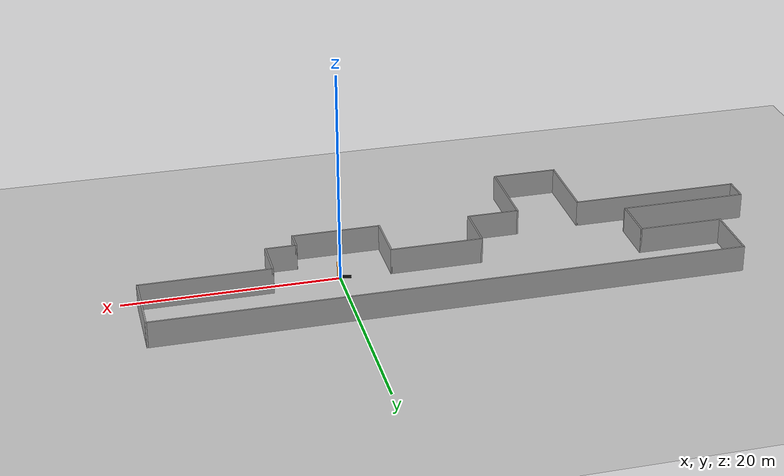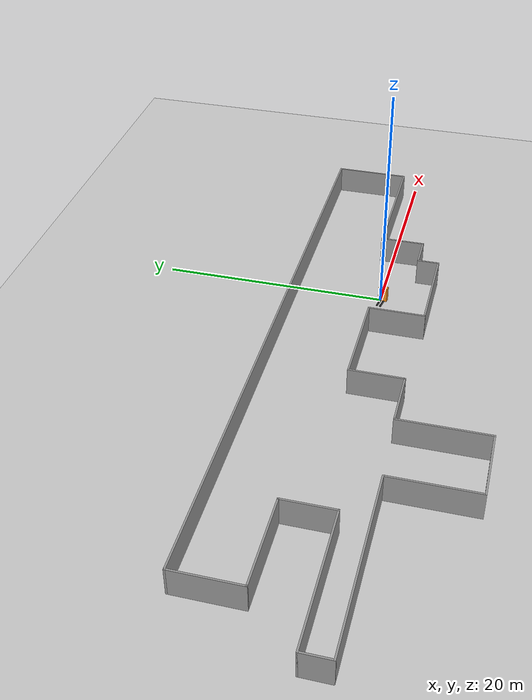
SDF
<sdf version="1.7">
 <world name="default">
  <light name="sun" type="directional">
   <pose>0 0 10 0 -0 0</pose>
   <diffuse>0.8 0.8 0.8 1</diffuse>
   <specular>0.2 0.2 0.2 1</specular>
   <attenuation>
    <range>1000</range>
    <constant>0.9</constant>
    <linear>0.01</linear>
    <quadratic>0.001</quadratic>
   </attenuation>
   <direction>-0.5 0.1 -0.9</direction>
   <spot><inner_angle>0</inner_angle><outer_angle>0</outer_angle><falloff>0</falloff></spot>
  </light>
  <model name="ground_plane">
   <static>1</static>
   <link name="link">
    <collision name="collision">
     <geometry><plane><normal>0 0 1</normal><size>100 100</size></plane></geometry>
     <surface>
      <contact><collide_bitmask>65535</collide_bitmask></contact>
      <friction><ode><mu>100</mu><mu2>50</mu2></ode></friction>
     </surface>
    </collision>
    <visual name="visual">
     <cast_shadows>0</cast_shadows>
     <geometry><plane><normal>0 0 1</normal><size>100 100</size></plane></geometry>
     <material>
      <script><uri>file://media/materials/scripts/gazebo.material</uri><name>Gazebo/Grey</name></script>
     </material>
    </visual>
   </link>
  </model>
  <gravity>0 0 -9.8</gravity>
  <magnetic_field>6e-06 2.3e-05 -4.2e-05</magnetic_field>
  <atmosphere type="adiabatic"/>
  <physics type="ode">
   <max_step_size>0.001</max_step_size>
   <real_time_factor>1</real_time_factor>
   <real_time_update_rate>1000</real_time_update_rate>
  </physics>
  <scene><ambient>0.4 0.4 0.4 1</ambient><background>0.7 0.7 0.7 1</background><shadows>1</shadows></scene>
  <audio><device>default</device></audio>
  <spherical_coordinates>
   <surface_model>EARTH_WGS84</surface_model>
   <latitude_deg>0</latitude_deg>
   <longitude_deg>0</longitude_deg>
   <elevation>0</elevation>
   <heading_deg>0</heading_deg>
  </spherical_coordinates>
  <model name="stacker">
   <link name="base_link">
    <inertial>
     <pose>-0.15 -0.000119 0.545385 0 -0 0</pose>
     <mass>260</mass>
     <inertia>
      <ixx>65.5208</ixx>
      <ixy>-0.157227</ixy>
      <ixz>-20.0967</ixz>
      <iyy>79.6196</iyy>
      <iyz>-4.194</iyz>
      <izz>34.2687</izz>
     </inertia>
    </inertial>
    <collision name="base_link_fixed_joint_lump__chassis_collision">
     <pose>0 0 0.7 0 0 -1.57</pose>
     <geometry><box><size>0.8 0.4 1.4</size></box></geometry>
    </collision>
    <collision name="base_link_fixed_joint_lump__left_fork_collision_1">
     <pose>-0.650124 0.15594 0.03 0 0 -1.57</pose>
     <geometry><box><size>0.16 0.9 0.06</size></box></geometry>
    </collision>
    <collision name="base_link_fixed_joint_lump__right_fork_collision_2">
     <pose>-0.649875 -0.156976 0.03 0 0 -1.57</pose>
     <geometry><box><size>0.16 0.9 0.06</size></box></geometry>
    </collision>
    <visual name="base_link_fixed_joint_lump__chassis_visual">
     <pose>0 0 0.7 0 0 -1.57</pose>
     <geometry><box><size>0.8 0.4 1.4</size></box></geometry>
     <material>
      <script><name>Gazebo/Orange</name><uri>file://media/materials/scripts/gazebo.material</uri></script>
     </material>
    </visual>
    <visual name="base_link_fixed_joint_lump__left_fork_visual_1">
     <pose>-0.650124 0.15594 0.03 0 0 -1.57</pose>
     <geometry><box><size>0.16 0.9 0.06</size></box></geometry>
     <material>
      <script><name>Gazebo/Black</name><uri>file://media/materials/scripts/gazebo.material</uri></script>
     </material>
    </visual>
    <visual name="base_link_fixed_joint_lump__right_fork_visual_2">
     <pose>-0.649875 -0.156976 0.03 0 0 -1.57</pose>
     <geometry><box><size>0.16 0.9 0.06</size></box></geometry>
     <material>
      <script><name>Gazebo/Black</name><uri>file://media/materials/scripts/gazebo.material</uri></script>
     </material>
    </visual>
   </link>
   <joint name="fork_wheel_l_joint" type="revolute">
    <pose relative_to="base_link">-0.870124 0.155765 0.0075 -1.57 0 -3.14</pose>
    <parent>base_link</parent>
    <child>fox_wheel_L</child>
    <axis>
     <xyz>0 0 -1</xyz>
     <limit><lower>-1e+16</lower><upper>1e+16</upper></limit>
     <dynamics><spring_reference>0</spring_reference><spring_stiffness>0</spring_stiffness></dynamics>
    </axis>
   </joint>
   <link name="fox_wheel_L">
    <pose relative_to="fork_wheel_l_joint">0 0 0 0 -0 0</pose>
    <inertial>
     <mass>1</mass>
     <inertia>
      <ixx>0.000689583</ixx>
      <ixy>0</ixy>
      <ixz>0</ixz>
      <iyy>0.000689583</iyy>
      <iyz>0</iyz>
      <izz>0.0003125</izz>
     </inertia>
    </inertial>
    <collision name="fox_wheel_L_collision">
     <geometry><cylinder><length>0.08</length><radius>0.025</radius></cylinder></geometry>
     <surface><friction><ode><mu>1500</mu><mu2>1500</mu2></ode></friction></surface>
    </collision>
    <visual name="fox_wheel_L_visual">
     <geometry><cylinder><length>0.08</length><radius>0.025</radius></cylinder></geometry>
     <material>
      <script><name>Gazebo/Grey</name><uri>file://media/materials/scripts/gazebo.material</uri></script>
     </material>
    </visual>
   </link>
   <joint name="fork_wheel_r_joint" type="revolute">
    <pose relative_to="base_link">-0.869875 -0.157151 0.0075 -1.57 0 -3.14</pose>
    <parent>base_link</parent>
    <child>fox_wheel_R</child>
    <axis>
     <xyz>0 0 -1</xyz>
     <limit><lower>-1e+16</lower><upper>1e+16</upper></limit>
     <dynamics><spring_reference>0</spring_reference><spring_stiffness>0</spring_stiffness></dynamics>
    </axis>
   </joint>
   <link name="fox_wheel_R">
    <pose relative_to="fork_wheel_r_joint">0 0 0 0 -0 0</pose>
    <inertial>
     <mass>1</mass>
     <inertia>
      <ixx>0.000689583</ixx>
      <ixy>0</ixy>
      <ixz>0</ixz>
      <iyy>0.000689583</iyy>
      <iyz>0</iyz>
      <izz>0.0003125</izz>
     </inertia>
    </inertial>
    <collision name="fox_wheel_R_collision">
     <geometry><cylinder><length>0.08</length><radius>0.025</radius></cylinder></geometry>
     <surface><friction><ode><mu>1500</mu><mu2>1500</mu2></ode></friction></surface>
    </collision>
    <visual name="fox_wheel_R_visual">
     <geometry><cylinder><length>0.08</length><radius>0.025</radius></cylinder></geometry>
     <material>
      <script><name>Gazebo/Grey</name><uri>file://media/materials/scripts/gazebo.material</uri></script>
     </material>
    </visual>
   </link>
   <joint name="steering_joint" type="revolute">
    <pose relative_to="base_link">0 0 0.09 0 0 -1.57</pose>
    <parent>base_link</parent>
    <child>steering_joint_1</child>
    <axis>
     <xyz>0 0 1</xyz>
     <limit><lower>-1.57</lower><upper>1.57</upper><effort>10</effort><velocity>1</velocity></limit>
     <dynamics>
      <damping>10</damping>
      <friction>0</friction>
      <spring_reference>0</spring_reference>
      <spring_stiffness>0</spring_stiffness>
     </dynamics>
    </axis>
   </joint>
   <link name="steering_joint_1">
    <pose relative_to="steering_joint">0 0 0 0 -0 0</pose>
    <inertial>
     <mass>0.005</mass>
     <inertia><ixx>0.1</ixx><ixy>0</ixy><ixz>0</ixz><iyy>0.1</iyy><iyz>0</iyz><izz>0.1</izz></inertia>
    </inertial>
    <visual name="steering_joint_1_visual"><geometry><box><size>0.01 0.01 0.01</size></box></geometry></visual>
   </link>
   <joint name="traction_joint" type="revolute">
    <pose relative_to="steering_joint_1">0 0 0 -1.57 -0 -1.57</pose>
    <parent>steering_joint_1</parent>
    <child>wheel_1</child>
    <axis>
     <xyz>0 0 -1</xyz>
     <limit><effort>50</effort><velocity>0.5</velocity><lower>-1e+16</lower><upper>1e+16</upper></limit>
     <dynamics>
      <damping>2</damping>
      <friction>1</friction>
      <spring_reference>0</spring_reference>
      <spring_stiffness>0</spring_stiffness>
     </dynamics>
    </axis>
   </joint>
   <link name="wheel_1">
    <pose relative_to="traction_joint">0 0 0 0 -0 0</pose>
    <inertial>
     <mass>30</mass>
     <inertia>
      <ixx>0.199187</ixx>
      <ixy>0</ixy>
      <ixz>0</ixz>
      <iyy>0.199187</iyy>
      <iyz>0</iyz>
      <izz>0.198375</izz>
     </inertia>
    </inertial>
    <collision name="wheel_1_collision">
     <geometry><cylinder><length>0.2</length><radius>0.115</radius></cylinder></geometry>
     <surface><friction><ode><mu>1500</mu><mu2>1500</mu2></ode></friction></surface>
    </collision>
    <visual name="wheel_1_visual">
     <geometry><cylinder><length>0.2</length><radius>0.115</radius></cylinder></geometry>
     <material>
      <script><name>Gazebo/Grey</name><uri>file://media/materials/scripts/gazebo.material</uri></script>
     </material>
    </visual>
   </link>
   <static>0</static>
   <plugin name="gazebo_ros2_control" filename="libgazebo_ros2_control.so">
    <parameters>/home/humble/ros_control_ws/install/stacker_description/share/stacker_description/config/stacker_drive_controller.yaml</parameters>
   </plugin>
   <pose>0.071988 -0.203317 0.013473 0.000368 0.004668 -0.19288</pose>
  </model>
  <model name="test_world">
   <pose>-10.8 -2.095 0 0 -0 0</pose>
   <link name="Wall_0">
    <collision name="Wall_0_Collision">
     <geometry><box><size>8.25 0.15 2.5</size></box></geometry>
     <pose>0 0 1.25 0 -0 0</pose>
    </collision>
    <visual name="Wall_0_Visual">
     <pose>0 0 1.25 0 -0 0</pose>
     <geometry><box><size>8.25 0.15 2.5</size></box></geometry>
     <material>
      <script><uri>file://media/materials/scripts/gazebo.material</uri><name>Gazebo/Grey</name></script>
      <ambient>1 1 1 1</ambient>
     </material>
     <meta><layer>0</layer></meta>
    </visual>
    <pose>10.3 -2.475 0 0 -0 0</pose>
   </link>
   <link name="Wall_1">
    <collision name="Wall_1_Collision">
     <geometry><box><size>2 0.15 2.5</size></box></geometry>
     <pose>0 0 1.25 0 -0 0</pose>
    </collision>
    <visual name="Wall_1_Visual">
     <pose>0 0 1.25 0 -0 0</pose>
     <geometry><box><size>2 0.15 2.5</size></box></geometry>
     <material>
      <script><uri>file://media/materials/scripts/gazebo.material</uri><name>Gazebo/Grey</name></script>
      <ambient>1 1 1 1</ambient>
     </material>
     <meta><layer>0</layer></meta>
    </visual>
    <pose>14.35 -1.55 0 0 -0 1.5708</pose>
   </link>
   <link name="Wall_10">
    <collision name="Wall_10_Collision">
     <geometry><box><size>12 0.15 2.5</size></box></geometry>
     <pose>0 0 1.25 0 -0 0</pose>
    </collision>
    <visual name="Wall_10_Visual">
     <pose>0 0 1.25 0 -0 0</pose>
     <geometry><box><size>12 0.15 2.5</size></box></geometry>
     <material>
      <script><uri>file://media/materials/scripts/gazebo.material</uri><name>Gazebo/Grey</name></script>
      <ambient>1 1 1 1</ambient>
     </material>
     <meta><layer>0</layer></meta>
    </visual>
    <pose>-23.375 -0.125 0 0 -0 3.14159</pose>
   </link>
   <link name="Wall_11">
    <collision name="Wall_11_Collision">
     <geometry><box><size>2.5 0.15 2.5</size></box></geometry>
     <pose>0 0 1.25 0 -0 0</pose>
    </collision>
    <visual name="Wall_11_Visual">
     <pose>0 0 1.25 0 -0 0</pose>
     <geometry><box><size>2.5 0.15 2.5</size></box></geometry>
     <material>
      <script><uri>file://media/materials/scripts/gazebo.material</uri><name>Gazebo/Grey</name></script>
      <ambient>1 1 1 1</ambient>
     </material>
     <meta><layer>0</layer></meta>
    </visual>
    <pose>-29.3 -1.3 0 0 -0 -1.5708</pose>
   </link>
   <link name="Wall_12">
    <collision name="Wall_12_Collision">
     <geometry><box><size>16 0.15 2.5</size></box></geometry>
     <pose>0 0 1.25 0 -0 0</pose>
    </collision>
    <visual name="Wall_12_Visual">
     <pose>0 0 1.25 0 -0 0</pose>
     <geometry><box><size>16 0.15 2.5</size></box></geometry>
     <material>
      <script><uri>file://media/materials/scripts/gazebo.material</uri><name>Gazebo/Grey</name></script>
      <ambient>1 1 1 1</ambient>
     </material>
     <meta><layer>0</layer></meta>
    </visual>
    <pose>-21.375 -2.475 0 0 -0 0</pose>
   </link>
   <link name="Wall_13">
    <collision name="Wall_13_Collision">
     <geometry><box><size>7.5 0.15 2.5</size></box></geometry>
     <pose>0 0 1.25 0 -0 0</pose>
    </collision>
    <visual name="Wall_13_Visual">
     <pose>0 0 1.25 0 -0 0</pose>
     <geometry><box><size>7.5 0.15 2.5</size></box></geometry>
     <material>
      <script><uri>file://media/materials/scripts/gazebo.material</uri><name>Gazebo/Grey</name></script>
      <ambient>1 1 1 1</ambient>
     </material>
     <meta><layer>0</layer></meta>
    </visual>
    <pose>-13.45 -6.15 0 0 -0 -1.5708</pose>
   </link>
   <link name="Wall_14">
    <collision name="Wall_14_Collision">
     <geometry><box><size>6.25 0.15 2.5</size></box></geometry>
     <pose>0 0 1.25 0 -0 0</pose>
    </collision>
    <visual name="Wall_14_Visual">
     <pose>0 0 1.25 0 -0 0</pose>
     <geometry><box><size>6.25 0.15 2.5</size></box></geometry>
     <material>
      <script><uri>file://media/materials/scripts/gazebo.material</uri><name>Gazebo/Grey</name></script>
      <ambient>1 1 1 1</ambient>
     </material>
     <meta><layer>0</layer></meta>
    </visual>
    <pose>-10.4 -9.825 0 0 -0 0</pose>
   </link>
   <link name="Wall_15">
    <collision name="Wall_15_Collision">
     <geometry><box><size>7.75 0.15 2.5</size></box></geometry>
     <pose>0 0 1.25 0 -0 0</pose>
    </collision>
    <visual name="Wall_15_Visual">
     <pose>0 0 1.25 0 -0 0</pose>
     <geometry><box><size>7.75 0.15 2.5</size></box></geometry>
     <material>
      <script><uri>file://media/materials/scripts/gazebo.material</uri><name>Gazebo/Grey</name></script>
      <ambient>1 1 1 1</ambient>
     </material>
     <meta><layer>0</layer></meta>
    </visual>
    <pose>-7.35 -6.025 0 0 -0 1.5708</pose>
   </link>
   <link name="Wall_16">
    <collision name="Wall_16_Collision">
     <geometry><box><size>5 0.15 2.5</size></box></geometry>
     <pose>0 0 1.25 0 -0 0</pose>
    </collision>
    <visual name="Wall_16_Visual">
     <pose>0 0 1.25 0 -0 0</pose>
     <geometry><box><size>5 0.15 2.5</size></box></geometry>
     <material>
      <script><uri>file://media/materials/scripts/gazebo.material</uri><name>Gazebo/Grey</name></script>
      <ambient>1 1 1 1</ambient>
     </material>
     <meta><layer>0</layer></meta>
    </visual>
    <pose>-4.925 -2.225 0 0 -0 0</pose>
   </link>
   <link name="Wall_17">
    <collision name="Wall_17_Collision">
     <geometry><box><size>4.75 0.15 2.5</size></box></geometry>
     <pose>0 0 1.25 0 -0 0</pose>
    </collision>
    <visual name="Wall_17_Visual">
     <pose>0 0 1.25 0 -0 0</pose>
     <geometry><box><size>4.75 0.15 2.5</size></box></geometry>
     <material>
      <script><uri>file://media/materials/scripts/gazebo.material</uri><name>Gazebo/Grey</name></script>
      <ambient>1 1 1 1</ambient>
     </material>
     <meta><layer>0</layer></meta>
    </visual>
    <pose>-2.5 0.075 0 0 -0 1.5708</pose>
   </link>
   <link name="Wall_18">
    <collision name="Wall_18_Collision">
     <geometry><box><size>8.75 0.15 2.5</size></box></geometry>
     <pose>0 0 1.25 0 -0 0</pose>
    </collision>
    <visual name="Wall_18_Visual">
     <pose>0 0 1.25 0 -0 0</pose>
     <geometry><box><size>8.75 0.15 2.5</size></box></geometry>
     <material>
      <script><uri>file://media/materials/scripts/gazebo.material</uri><name>Gazebo/Grey</name></script>
      <ambient>1 1 1 1</ambient>
     </material>
     <meta><layer>0</layer></meta>
    </visual>
    <pose>1.8 2.375 0 0 -0 0</pose>
   </link>
   <link name="Wall_19">
    <collision name="Wall_19_Collision">
     <geometry><box><size>5 0.15 2.5</size></box></geometry>
     <pose>0 0 1.25 0 -0 0</pose>
    </collision>
    <visual name="Wall_19_Visual">
     <pose>0 0 1.25 0 -0 0</pose>
     <geometry><box><size>5 0.15 2.5</size></box></geometry>
     <material>
      <script><uri>file://media/materials/scripts/gazebo.material</uri><name>Gazebo/Grey</name></script>
      <ambient>1 1 1 1</ambient>
     </material>
     <meta><layer>0</layer></meta>
    </visual>
    <pose>6.1 -0.05 0 0 -0 -1.5708</pose>
   </link>
   <link name="Wall_2">
    <collision name="Wall_2_Collision">
     <geometry><box><size>3 0.15 2.5</size></box></geometry>
     <pose>0 0 1.25 0 -0 0</pose>
    </collision>
    <visual name="Wall_2_Visual">
     <pose>0 0 1.25 0 -0 0</pose>
     <geometry><box><size>3 0.15 2.5</size></box></geometry>
     <material>
      <script><uri>file://media/materials/scripts/gazebo.material</uri><name>Gazebo/Grey</name></script>
      <ambient>1 1 1 1</ambient>
     </material>
     <meta><layer>0</layer></meta>
    </visual>
    <pose>15.775 -0.625 0 0 -0 0</pose>
   </link>
   <link name="Wall_3">
    <collision name="Wall_3_Collision">
     <geometry><box><size>4 0.15 2.5</size></box></geometry>
     <pose>0 0 1.25 0 -0 0</pose>
    </collision>
    <visual name="Wall_3_Visual">
     <pose>0 0 1.25 0 -0 0</pose>
     <geometry><box><size>4 0.15 2.5</size></box></geometry>
     <material>
      <script><uri>file://media/materials/scripts/gazebo.material</uri><name>Gazebo/Grey</name></script>
      <ambient>1 1 1 1</ambient>
     </material>
     <meta><layer>0</layer></meta>
    </visual>
    <pose>17.2 1.3 0 0 -0 1.5708</pose>
   </link>
   <link name="Wall_4">
    <collision name="Wall_4_Collision">
     <geometry><box><size>12.25 0.15 2.5</size></box></geometry>
     <pose>0 0 1.25 0 -0 0</pose>
    </collision>
    <visual name="Wall_4_Visual">
     <pose>0 0 1.25 0 -0 0</pose>
     <geometry><box><size>12.25 0.15 2.5</size></box></geometry>
     <material>
      <script><uri>file://media/materials/scripts/gazebo.material</uri><name>Gazebo/Grey</name></script>
      <ambient>1 1 1 1</ambient>
     </material>
     <meta><layer>0</layer></meta>
    </visual>
    <pose>23.25 3.225 0 0 -0 0</pose>
   </link>
   <link name="Wall_5">
    <collision name="Wall_5_Collision">
     <geometry><box><size>6.75 0.15 2.5</size></box></geometry>
     <pose>0 0 1.25 0 -0 0</pose>
    </collision>
    <visual name="Wall_5_Visual">
     <pose>0 0 1.25 0 -0 0</pose>
     <geometry><box><size>6.75 0.15 2.5</size></box></geometry>
     <material>
      <script><uri>file://media/materials/scripts/gazebo.material</uri><name>Gazebo/Grey</name></script>
      <ambient>1 1 1 1</ambient>
     </material>
     <meta><layer>0</layer></meta>
    </visual>
    <pose>29.3 6.525 0 0 -0 1.5708</pose>
   </link>
   <link name="Wall_6">
    <collision name="Wall_6_Collision">
     <geometry><box><size>54.75 0.15 2.5</size></box></geometry>
     <pose>0 0 1.25 0 -0 0</pose>
    </collision>
    <visual name="Wall_6_Visual">
     <pose>0 0 1.25 0 -0 0</pose>
     <geometry><box><size>54.75 0.15 2.5</size></box></geometry>
     <material>
      <script><uri>file://media/materials/scripts/gazebo.material</uri><name>Gazebo/Grey</name></script>
      <ambient>1 1 1 1</ambient>
     </material>
     <meta><layer>0</layer></meta>
    </visual>
    <pose>2 9.825 0 0 -0 3.14159</pose>
   </link>
   <link name="Wall_7">
    <collision name="Wall_7_Collision">
     <geometry><box><size>5.75 0.15 2.5</size></box></geometry>
     <pose>0 0 1.25 0 -0 0</pose>
    </collision>
    <visual name="Wall_7_Visual">
     <pose>0 0 1.25 0 -0 0</pose>
     <geometry><box><size>5.75 0.15 2.5</size></box></geometry>
     <material>
      <script><uri>file://media/materials/scripts/gazebo.material</uri><name>Gazebo/Grey</name></script>
      <ambient>1 1 1 1</ambient>
     </material>
     <meta><layer>0</layer></meta>
    </visual>
    <pose>-25.3 7.025 0 0 -0 -1.5708</pose>
   </link>
   <link name="Wall_8">
    <collision name="Wall_8_Collision">
     <geometry><box><size>8 0.15 2.5</size></box></geometry>
     <pose>0 0 1.25 0 -0 0</pose>
    </collision>
    <visual name="Wall_8_Visual">
     <pose>0 0 1.25 0 -0 0</pose>
     <geometry><box><size>8 0.15 2.5</size></box></geometry>
     <material>
      <script><uri>file://media/materials/scripts/gazebo.material</uri><name>Gazebo/Grey</name></script>
      <ambient>1 1 1 1</ambient>
     </material>
     <meta><layer>0</layer></meta>
    </visual>
    <pose>-21.375 4.225 0 0 -0 0</pose>
   </link>
   <link name="Wall_9">
    <collision name="Wall_9_Collision">
     <geometry><box><size>4.5 0.15 2.5</size></box></geometry>
     <pose>0 0 1.25 0 -0 0</pose>
    </collision>
    <visual name="Wall_9_Visual">
     <pose>0 0 1.25 0 -0 0</pose>
     <geometry><box><size>4.5 0.15 2.5</size></box></geometry>
     <material>
      <script><uri>file://media/materials/scripts/gazebo.material</uri><name>Gazebo/Grey</name></script>
      <ambient>1 1 1 1</ambient>
     </material>
     <meta><layer>0</layer></meta>
    </visual>
    <pose>-17.45 2.05 0 0 -0 -1.5708</pose>
   </link>
   <static>1</static>
  </model>
 </world>
</sdf>
